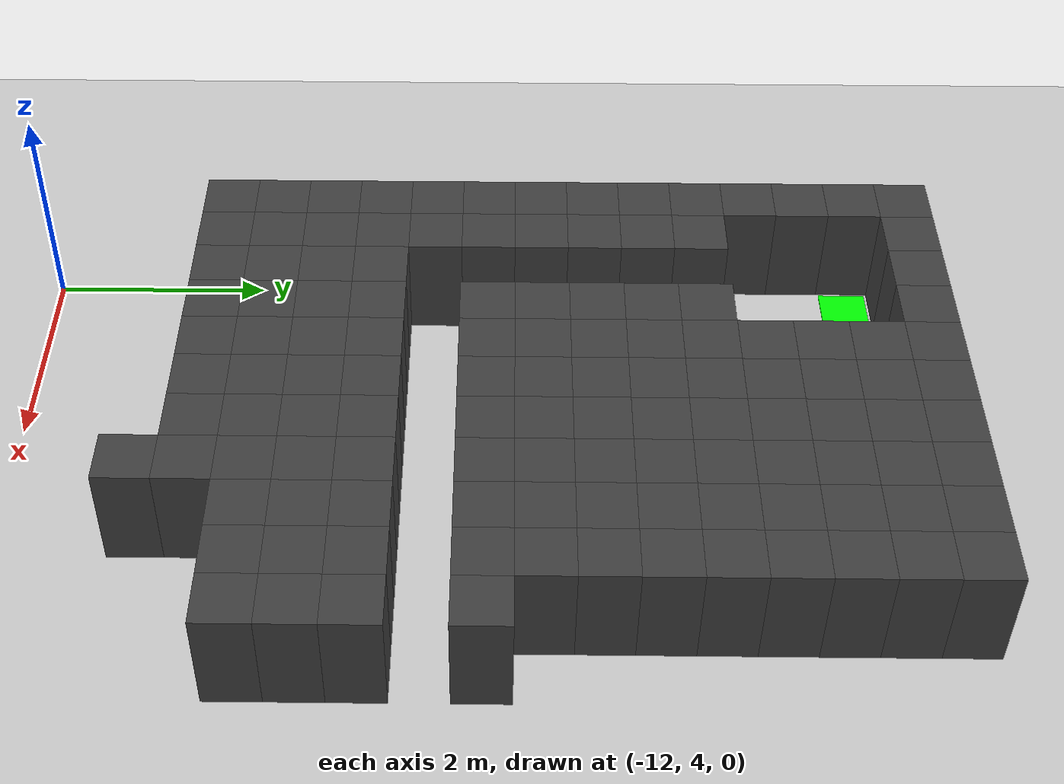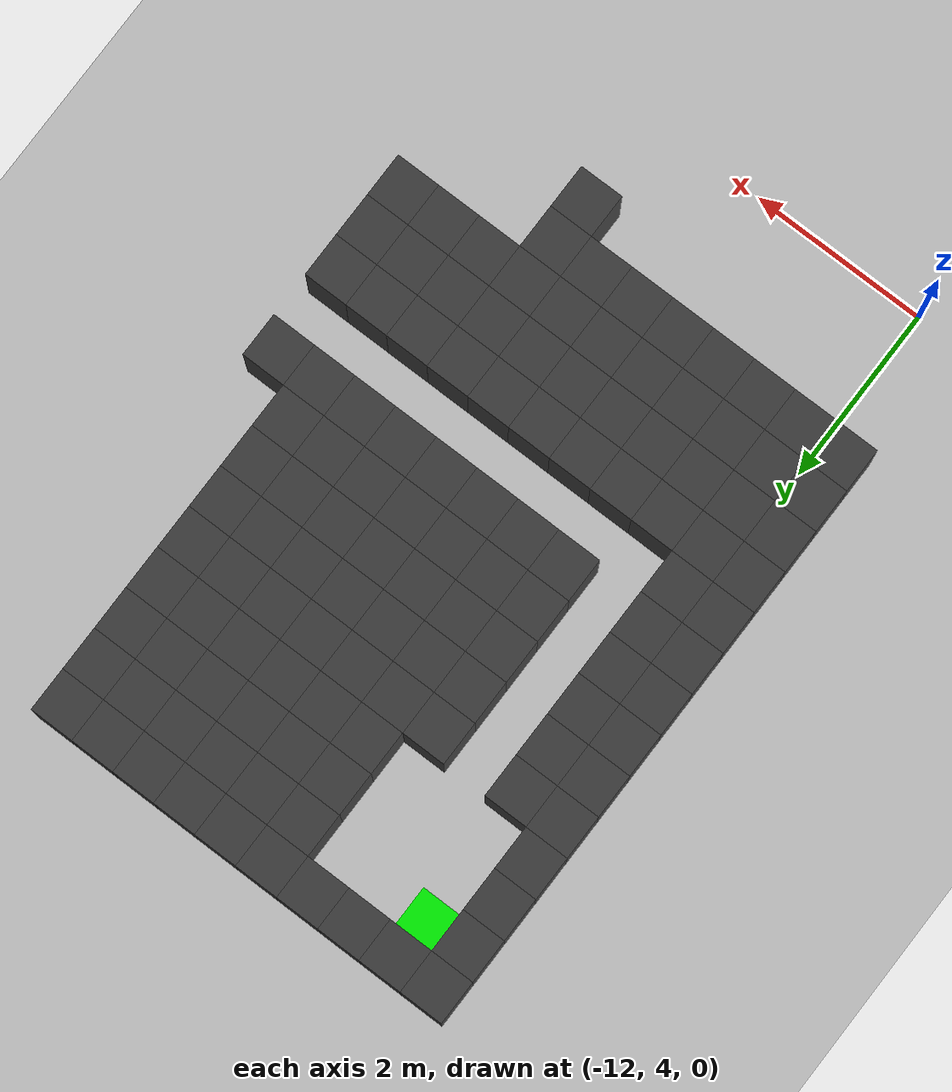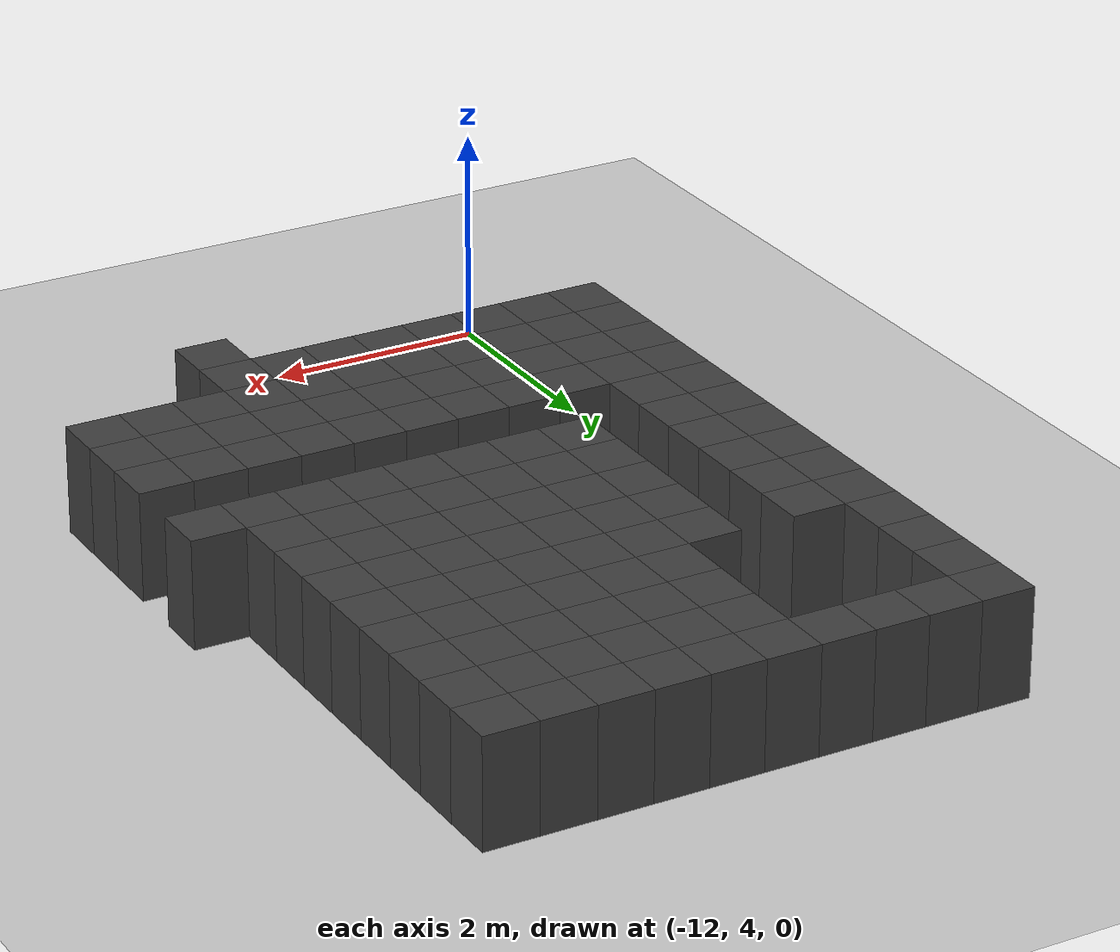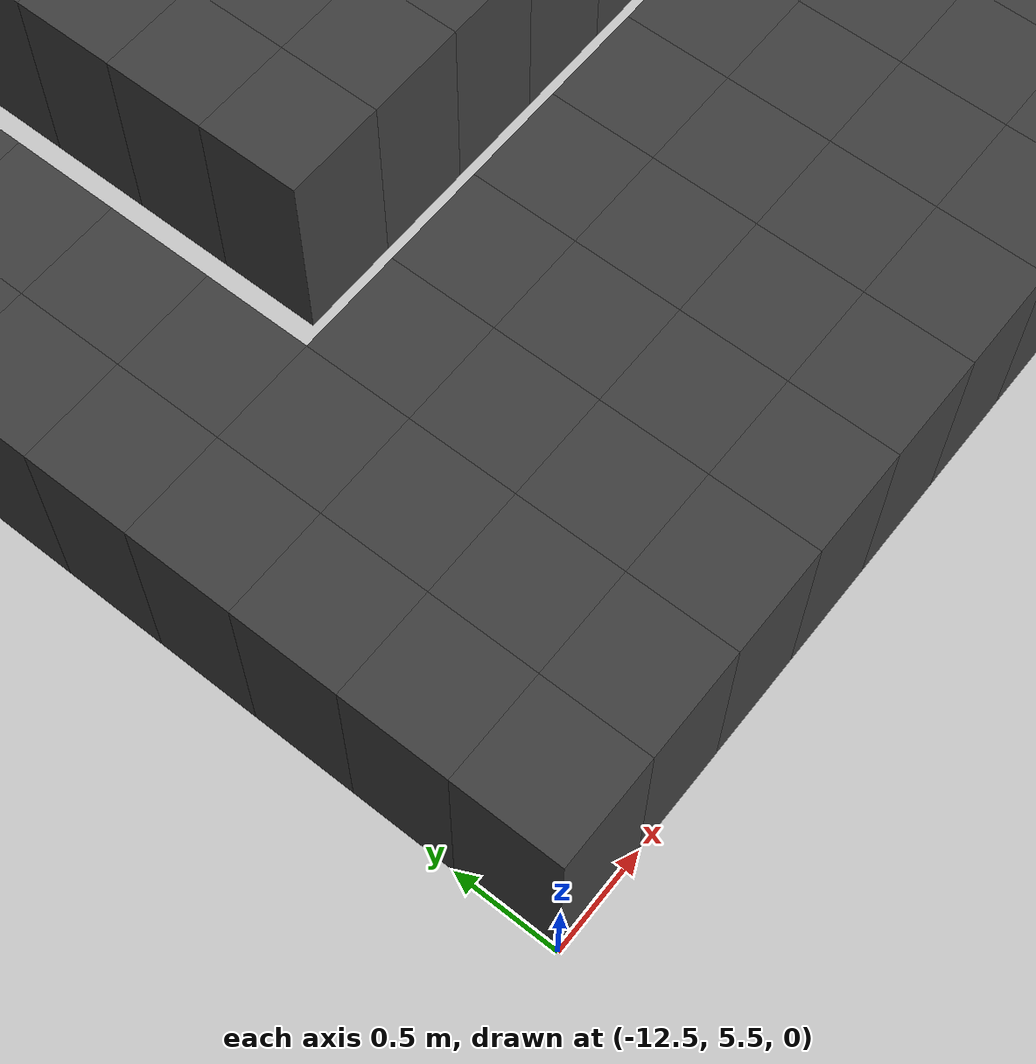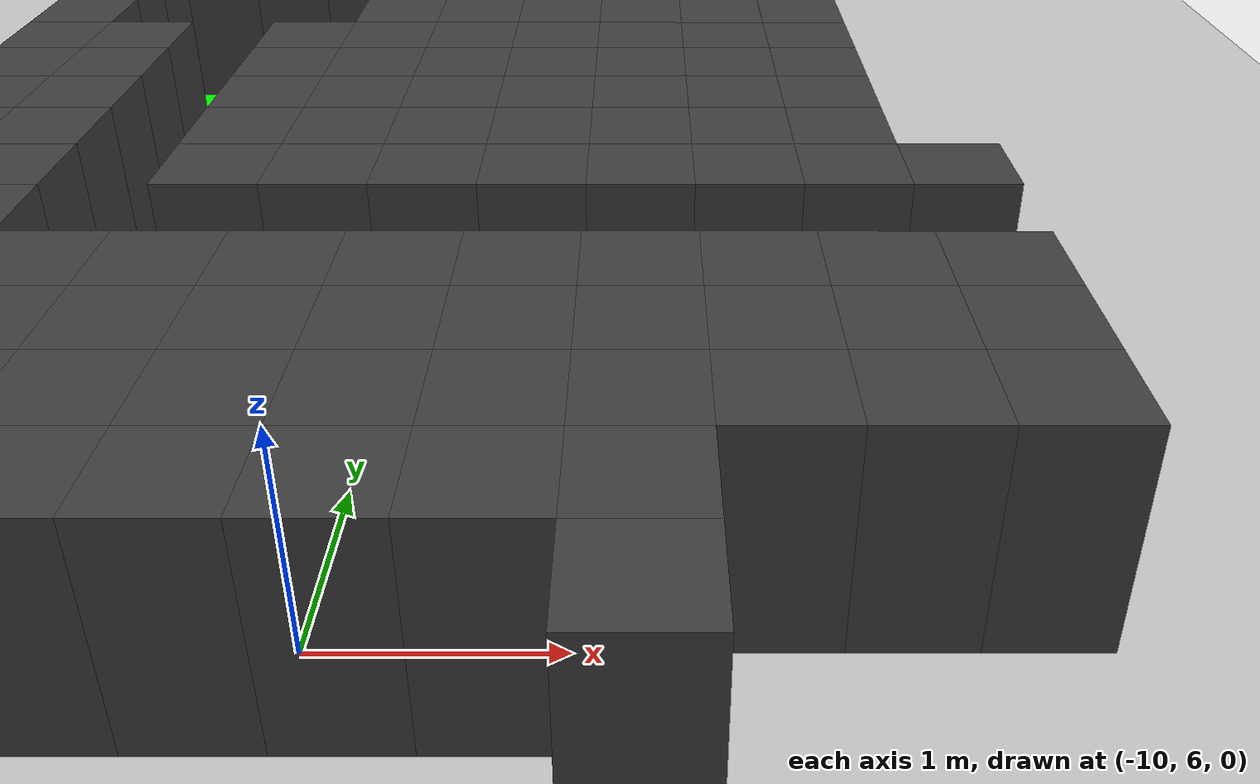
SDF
<sdf version="1.7">
 <world name="map_14888">
  <model name="ground_plane">
   <static>true</static>
   <link name="link">
    <collision name="collision">
     <geometry><plane><normal>0 0 1</normal><size>200 200</size></plane></geometry>
    </collision>
    <visual name="visual">
     <geometry><plane><normal>0 0 1</normal><size>200 200</size></plane></geometry>
     <material><ambient>0.8 0.8 0.8 1</ambient><diffuse>0.8 0.8 0.8 1</diffuse></material>
    </visual>
   </link>
  </model>
  <model name="maze_environment">
   <static>true</static>
   <link name="wall_0">
    <pose>-12.250 12.250 0.500 0 0 0</pose>
    <collision name="col"><geometry><box><size>0.5 0.5 1.0</size></box></geometry></collision>
    <visual name="vis">
     <geometry><box><size>0.5 0.5 1.0</size></box></geometry>
     <material><ambient>0.15 0.15 0.15 1</ambient><diffuse>0.25 0.25 0.25 1</diffuse></material>
    </visual>
   </link>
   <link name="wall_1">
    <pose>-11.750 12.250 0.500 0 0 0</pose>
    <collision name="col"><geometry><box><size>0.5 0.5 1.0</size></box></geometry></collision>
    <visual name="vis">
     <geometry><box><size>0.5 0.5 1.0</size></box></geometry>
     <material><ambient>0.15 0.15 0.15 1</ambient><diffuse>0.25 0.25 0.25 1</diffuse></material>
    </visual>
   </link>
   <link name="wall_2">
    <pose>-11.250 12.250 0.500 0 0 0</pose>
    <collision name="col"><geometry><box><size>0.5 0.5 1.0</size></box></geometry></collision>
    <visual name="vis">
     <geometry><box><size>0.5 0.5 1.0</size></box></geometry>
     <material><ambient>0.15 0.15 0.15 1</ambient><diffuse>0.25 0.25 0.25 1</diffuse></material>
    </visual>
   </link>
   <link name="wall_3">
    <pose>-10.750 12.250 0.500 0 0 0</pose>
    <collision name="col"><geometry><box><size>0.5 0.5 1.0</size></box></geometry></collision>
    <visual name="vis">
     <geometry><box><size>0.5 0.5 1.0</size></box></geometry>
     <material><ambient>0.15 0.15 0.15 1</ambient><diffuse>0.25 0.25 0.25 1</diffuse></material>
    </visual>
   </link>
   <link name="wall_4">
    <pose>-10.250 12.250 0.500 0 0 0</pose>
    <collision name="col"><geometry><box><size>0.5 0.5 1.0</size></box></geometry></collision>
    <visual name="vis">
     <geometry><box><size>0.5 0.5 1.0</size></box></geometry>
     <material><ambient>0.15 0.15 0.15 1</ambient><diffuse>0.25 0.25 0.25 1</diffuse></material>
    </visual>
   </link>
   <link name="wall_5">
    <pose>-9.750 12.250 0.500 0 0 0</pose>
    <collision name="col"><geometry><box><size>0.5 0.5 1.0</size></box></geometry></collision>
    <visual name="vis">
     <geometry><box><size>0.5 0.5 1.0</size></box></geometry>
     <material><ambient>0.15 0.15 0.15 1</ambient><diffuse>0.25 0.25 0.25 1</diffuse></material>
    </visual>
   </link>
   <link name="wall_6">
    <pose>-9.250 12.250 0.500 0 0 0</pose>
    <collision name="col"><geometry><box><size>0.5 0.5 1.0</size></box></geometry></collision>
    <visual name="vis">
     <geometry><box><size>0.5 0.5 1.0</size></box></geometry>
     <material><ambient>0.15 0.15 0.15 1</ambient><diffuse>0.25 0.25 0.25 1</diffuse></material>
    </visual>
   </link>
   <link name="wall_7">
    <pose>-8.750 12.250 0.500 0 0 0</pose>
    <collision name="col"><geometry><box><size>0.5 0.5 1.0</size></box></geometry></collision>
    <visual name="vis">
     <geometry><box><size>0.5 0.5 1.0</size></box></geometry>
     <material><ambient>0.15 0.15 0.15 1</ambient><diffuse>0.25 0.25 0.25 1</diffuse></material>
    </visual>
   </link>
   <link name="wall_8">
    <pose>-8.250 12.250 0.500 0 0 0</pose>
    <collision name="col"><geometry><box><size>0.5 0.5 1.0</size></box></geometry></collision>
    <visual name="vis">
     <geometry><box><size>0.5 0.5 1.0</size></box></geometry>
     <material><ambient>0.15 0.15 0.15 1</ambient><diffuse>0.25 0.25 0.25 1</diffuse></material>
    </visual>
   </link>
   <link name="wall_9">
    <pose>-7.750 12.250 0.500 0 0 0</pose>
    <collision name="col"><geometry><box><size>0.5 0.5 1.0</size></box></geometry></collision>
    <visual name="vis">
     <geometry><box><size>0.5 0.5 1.0</size></box></geometry>
     <material><ambient>0.15 0.15 0.15 1</ambient><diffuse>0.25 0.25 0.25 1</diffuse></material>
    </visual>
   </link>
   <link name="wall_50">
    <pose>-12.250 11.750 0.500 0 0 0</pose>
    <collision name="col"><geometry><box><size>0.5 0.5 1.0</size></box></geometry></collision>
    <visual name="vis">
     <geometry><box><size>0.5 0.5 1.0</size></box></geometry>
     <material><ambient>0.15 0.15 0.15 1</ambient><diffuse>0.25 0.25 0.25 1</diffuse></material>
    </visual>
   </link>
   <link name="wall_51">
    <pose>-10.250 11.750 0.500 0 0 0</pose>
    <collision name="col"><geometry><box><size>0.5 0.5 1.0</size></box></geometry></collision>
    <visual name="vis">
     <geometry><box><size>0.5 0.5 1.0</size></box></geometry>
     <material><ambient>0.15 0.15 0.15 1</ambient><diffuse>0.25 0.25 0.25 1</diffuse></material>
    </visual>
   </link>
   <link name="wall_52">
    <pose>-9.750 11.750 0.500 0 0 0</pose>
    <collision name="col"><geometry><box><size>0.5 0.5 1.0</size></box></geometry></collision>
    <visual name="vis">
     <geometry><box><size>0.5 0.5 1.0</size></box></geometry>
     <material><ambient>0.15 0.15 0.15 1</ambient><diffuse>0.25 0.25 0.25 1</diffuse></material>
    </visual>
   </link>
   <link name="wall_53">
    <pose>-9.250 11.750 0.500 0 0 0</pose>
    <collision name="col"><geometry><box><size>0.5 0.5 1.0</size></box></geometry></collision>
    <visual name="vis">
     <geometry><box><size>0.5 0.5 1.0</size></box></geometry>
     <material><ambient>0.15 0.15 0.15 1</ambient><diffuse>0.25 0.25 0.25 1</diffuse></material>
    </visual>
   </link>
   <link name="wall_54">
    <pose>-8.750 11.750 0.500 0 0 0</pose>
    <collision name="col"><geometry><box><size>0.5 0.5 1.0</size></box></geometry></collision>
    <visual name="vis">
     <geometry><box><size>0.5 0.5 1.0</size></box></geometry>
     <material><ambient>0.15 0.15 0.15 1</ambient><diffuse>0.25 0.25 0.25 1</diffuse></material>
    </visual>
   </link>
   <link name="wall_55">
    <pose>-8.250 11.750 0.500 0 0 0</pose>
    <collision name="col"><geometry><box><size>0.5 0.5 1.0</size></box></geometry></collision>
    <visual name="vis">
     <geometry><box><size>0.5 0.5 1.0</size></box></geometry>
     <material><ambient>0.15 0.15 0.15 1</ambient><diffuse>0.25 0.25 0.25 1</diffuse></material>
    </visual>
   </link>
   <link name="wall_56">
    <pose>-7.750 11.750 0.500 0 0 0</pose>
    <collision name="col"><geometry><box><size>0.5 0.5 1.0</size></box></geometry></collision>
    <visual name="vis">
     <geometry><box><size>0.5 0.5 1.0</size></box></geometry>
     <material><ambient>0.15 0.15 0.15 1</ambient><diffuse>0.25 0.25 0.25 1</diffuse></material>
    </visual>
   </link>
   <link name="wall_97">
    <pose>-12.250 11.250 0.500 0 0 0</pose>
    <collision name="col"><geometry><box><size>0.5 0.5 1.0</size></box></geometry></collision>
    <visual name="vis">
     <geometry><box><size>0.5 0.5 1.0</size></box></geometry>
     <material><ambient>0.15 0.15 0.15 1</ambient><diffuse>0.25 0.25 0.25 1</diffuse></material>
    </visual>
   </link>
   <link name="wall_98">
    <pose>-10.250 11.250 0.500 0 0 0</pose>
    <collision name="col"><geometry><box><size>0.5 0.5 1.0</size></box></geometry></collision>
    <visual name="vis">
     <geometry><box><size>0.5 0.5 1.0</size></box></geometry>
     <material><ambient>0.15 0.15 0.15 1</ambient><diffuse>0.25 0.25 0.25 1</diffuse></material>
    </visual>
   </link>
   <link name="wall_99">
    <pose>-9.750 11.250 0.500 0 0 0</pose>
    <collision name="col"><geometry><box><size>0.5 0.5 1.0</size></box></geometry></collision>
    <visual name="vis">
     <geometry><box><size>0.5 0.5 1.0</size></box></geometry>
     <material><ambient>0.15 0.15 0.15 1</ambient><diffuse>0.25 0.25 0.25 1</diffuse></material>
    </visual>
   </link>
   <link name="wall_100">
    <pose>-9.250 11.250 0.500 0 0 0</pose>
    <collision name="col"><geometry><box><size>0.5 0.5 1.0</size></box></geometry></collision>
    <visual name="vis">
     <geometry><box><size>0.5 0.5 1.0</size></box></geometry>
     <material><ambient>0.15 0.15 0.15 1</ambient><diffuse>0.25 0.25 0.25 1</diffuse></material>
    </visual>
   </link>
   <link name="wall_101">
    <pose>-8.750 11.250 0.500 0 0 0</pose>
    <collision name="col"><geometry><box><size>0.5 0.5 1.0</size></box></geometry></collision>
    <visual name="vis">
     <geometry><box><size>0.5 0.5 1.0</size></box></geometry>
     <material><ambient>0.15 0.15 0.15 1</ambient><diffuse>0.25 0.25 0.25 1</diffuse></material>
    </visual>
   </link>
   <link name="wall_102">
    <pose>-8.250 11.250 0.500 0 0 0</pose>
    <collision name="col"><geometry><box><size>0.5 0.5 1.0</size></box></geometry></collision>
    <visual name="vis">
     <geometry><box><size>0.5 0.5 1.0</size></box></geometry>
     <material><ambient>0.15 0.15 0.15 1</ambient><diffuse>0.25 0.25 0.25 1</diffuse></material>
    </visual>
   </link>
   <link name="wall_103">
    <pose>-7.750 11.250 0.500 0 0 0</pose>
    <collision name="col"><geometry><box><size>0.5 0.5 1.0</size></box></geometry></collision>
    <visual name="vis">
     <geometry><box><size>0.5 0.5 1.0</size></box></geometry>
     <material><ambient>0.15 0.15 0.15 1</ambient><diffuse>0.25 0.25 0.25 1</diffuse></material>
    </visual>
   </link>
   <link name="wall_138">
    <pose>-12.250 10.750 0.500 0 0 0</pose>
    <collision name="col"><geometry><box><size>0.5 0.5 1.0</size></box></geometry></collision>
    <visual name="vis">
     <geometry><box><size>0.5 0.5 1.0</size></box></geometry>
     <material><ambient>0.15 0.15 0.15 1</ambient><diffuse>0.25 0.25 0.25 1</diffuse></material>
    </visual>
   </link>
   <link name="wall_139">
    <pose>-10.250 10.750 0.500 0 0 0</pose>
    <collision name="col"><geometry><box><size>0.5 0.5 1.0</size></box></geometry></collision>
    <visual name="vis">
     <geometry><box><size>0.5 0.5 1.0</size></box></geometry>
     <material><ambient>0.15 0.15 0.15 1</ambient><diffuse>0.25 0.25 0.25 1</diffuse></material>
    </visual>
   </link>
   <link name="wall_140">
    <pose>-9.750 10.750 0.500 0 0 0</pose>
    <collision name="col"><geometry><box><size>0.5 0.5 1.0</size></box></geometry></collision>
    <visual name="vis">
     <geometry><box><size>0.5 0.5 1.0</size></box></geometry>
     <material><ambient>0.15 0.15 0.15 1</ambient><diffuse>0.25 0.25 0.25 1</diffuse></material>
    </visual>
   </link>
   <link name="wall_141">
    <pose>-9.250 10.750 0.500 0 0 0</pose>
    <collision name="col"><geometry><box><size>0.5 0.5 1.0</size></box></geometry></collision>
    <visual name="vis">
     <geometry><box><size>0.5 0.5 1.0</size></box></geometry>
     <material><ambient>0.15 0.15 0.15 1</ambient><diffuse>0.25 0.25 0.25 1</diffuse></material>
    </visual>
   </link>
   <link name="wall_142">
    <pose>-8.750 10.750 0.500 0 0 0</pose>
    <collision name="col"><geometry><box><size>0.5 0.5 1.0</size></box></geometry></collision>
    <visual name="vis">
     <geometry><box><size>0.5 0.5 1.0</size></box></geometry>
     <material><ambient>0.15 0.15 0.15 1</ambient><diffuse>0.25 0.25 0.25 1</diffuse></material>
    </visual>
   </link>
   <link name="wall_143">
    <pose>-8.250 10.750 0.500 0 0 0</pose>
    <collision name="col"><geometry><box><size>0.5 0.5 1.0</size></box></geometry></collision>
    <visual name="vis">
     <geometry><box><size>0.5 0.5 1.0</size></box></geometry>
     <material><ambient>0.15 0.15 0.15 1</ambient><diffuse>0.25 0.25 0.25 1</diffuse></material>
    </visual>
   </link>
   <link name="wall_144">
    <pose>-7.750 10.750 0.500 0 0 0</pose>
    <collision name="col"><geometry><box><size>0.5 0.5 1.0</size></box></geometry></collision>
    <visual name="vis">
     <geometry><box><size>0.5 0.5 1.0</size></box></geometry>
     <material><ambient>0.15 0.15 0.15 1</ambient><diffuse>0.25 0.25 0.25 1</diffuse></material>
    </visual>
   </link>
   <link name="wall_179">
    <pose>-12.250 10.250 0.500 0 0 0</pose>
    <collision name="col"><geometry><box><size>0.5 0.5 1.0</size></box></geometry></collision>
    <visual name="vis">
     <geometry><box><size>0.5 0.5 1.0</size></box></geometry>
     <material><ambient>0.15 0.15 0.15 1</ambient><diffuse>0.25 0.25 0.25 1</diffuse></material>
    </visual>
   </link>
   <link name="wall_180">
    <pose>-11.750 10.250 0.500 0 0 0</pose>
    <collision name="col"><geometry><box><size>0.5 0.5 1.0</size></box></geometry></collision>
    <visual name="vis">
     <geometry><box><size>0.5 0.5 1.0</size></box></geometry>
     <material><ambient>0.15 0.15 0.15 1</ambient><diffuse>0.25 0.25 0.25 1</diffuse></material>
    </visual>
   </link>
   <link name="wall_181">
    <pose>-10.750 10.250 0.500 0 0 0</pose>
    <collision name="col"><geometry><box><size>0.5 0.5 1.0</size></box></geometry></collision>
    <visual name="vis">
     <geometry><box><size>0.5 0.5 1.0</size></box></geometry>
     <material><ambient>0.15 0.15 0.15 1</ambient><diffuse>0.25 0.25 0.25 1</diffuse></material>
    </visual>
   </link>
   <link name="wall_182">
    <pose>-10.250 10.250 0.500 0 0 0</pose>
    <collision name="col"><geometry><box><size>0.5 0.5 1.0</size></box></geometry></collision>
    <visual name="vis">
     <geometry><box><size>0.5 0.5 1.0</size></box></geometry>
     <material><ambient>0.15 0.15 0.15 1</ambient><diffuse>0.25 0.25 0.25 1</diffuse></material>
    </visual>
   </link>
   <link name="wall_183">
    <pose>-9.750 10.250 0.500 0 0 0</pose>
    <collision name="col"><geometry><box><size>0.5 0.5 1.0</size></box></geometry></collision>
    <visual name="vis">
     <geometry><box><size>0.5 0.5 1.0</size></box></geometry>
     <material><ambient>0.15 0.15 0.15 1</ambient><diffuse>0.25 0.25 0.25 1</diffuse></material>
    </visual>
   </link>
   <link name="wall_184">
    <pose>-9.250 10.250 0.500 0 0 0</pose>
    <collision name="col"><geometry><box><size>0.5 0.5 1.0</size></box></geometry></collision>
    <visual name="vis">
     <geometry><box><size>0.5 0.5 1.0</size></box></geometry>
     <material><ambient>0.15 0.15 0.15 1</ambient><diffuse>0.25 0.25 0.25 1</diffuse></material>
    </visual>
   </link>
   <link name="wall_185">
    <pose>-8.750 10.250 0.500 0 0 0</pose>
    <collision name="col"><geometry><box><size>0.5 0.5 1.0</size></box></geometry></collision>
    <visual name="vis">
     <geometry><box><size>0.5 0.5 1.0</size></box></geometry>
     <material><ambient>0.15 0.15 0.15 1</ambient><diffuse>0.25 0.25 0.25 1</diffuse></material>
    </visual>
   </link>
   <link name="wall_186">
    <pose>-8.250 10.250 0.500 0 0 0</pose>
    <collision name="col"><geometry><box><size>0.5 0.5 1.0</size></box></geometry></collision>
    <visual name="vis">
     <geometry><box><size>0.5 0.5 1.0</size></box></geometry>
     <material><ambient>0.15 0.15 0.15 1</ambient><diffuse>0.25 0.25 0.25 1</diffuse></material>
    </visual>
   </link>
   <link name="wall_187">
    <pose>-7.750 10.250 0.500 0 0 0</pose>
    <collision name="col"><geometry><box><size>0.5 0.5 1.0</size></box></geometry></collision>
    <visual name="vis">
     <geometry><box><size>0.5 0.5 1.0</size></box></geometry>
     <material><ambient>0.15 0.15 0.15 1</ambient><diffuse>0.25 0.25 0.25 1</diffuse></material>
    </visual>
   </link>
   <link name="wall_222">
    <pose>-12.250 9.750 0.500 0 0 0</pose>
    <collision name="col"><geometry><box><size>0.5 0.5 1.0</size></box></geometry></collision>
    <visual name="vis">
     <geometry><box><size>0.5 0.5 1.0</size></box></geometry>
     <material><ambient>0.15 0.15 0.15 1</ambient><diffuse>0.25 0.25 0.25 1</diffuse></material>
    </visual>
   </link>
   <link name="wall_223">
    <pose>-11.750 9.750 0.500 0 0 0</pose>
    <collision name="col"><geometry><box><size>0.5 0.5 1.0</size></box></geometry></collision>
    <visual name="vis">
     <geometry><box><size>0.5 0.5 1.0</size></box></geometry>
     <material><ambient>0.15 0.15 0.15 1</ambient><diffuse>0.25 0.25 0.25 1</diffuse></material>
    </visual>
   </link>
   <link name="wall_224">
    <pose>-10.750 9.750 0.500 0 0 0</pose>
    <collision name="col"><geometry><box><size>0.5 0.5 1.0</size></box></geometry></collision>
    <visual name="vis">
     <geometry><box><size>0.5 0.5 1.0</size></box></geometry>
     <material><ambient>0.15 0.15 0.15 1</ambient><diffuse>0.25 0.25 0.25 1</diffuse></material>
    </visual>
   </link>
   <link name="wall_225">
    <pose>-10.250 9.750 0.500 0 0 0</pose>
    <collision name="col"><geometry><box><size>0.5 0.5 1.0</size></box></geometry></collision>
    <visual name="vis">
     <geometry><box><size>0.5 0.5 1.0</size></box></geometry>
     <material><ambient>0.15 0.15 0.15 1</ambient><diffuse>0.25 0.25 0.25 1</diffuse></material>
    </visual>
   </link>
   <link name="wall_226">
    <pose>-9.750 9.750 0.500 0 0 0</pose>
    <collision name="col"><geometry><box><size>0.5 0.5 1.0</size></box></geometry></collision>
    <visual name="vis">
     <geometry><box><size>0.5 0.5 1.0</size></box></geometry>
     <material><ambient>0.15 0.15 0.15 1</ambient><diffuse>0.25 0.25 0.25 1</diffuse></material>
    </visual>
   </link>
   <link name="wall_227">
    <pose>-9.250 9.750 0.500 0 0 0</pose>
    <collision name="col"><geometry><box><size>0.5 0.5 1.0</size></box></geometry></collision>
    <visual name="vis">
     <geometry><box><size>0.5 0.5 1.0</size></box></geometry>
     <material><ambient>0.15 0.15 0.15 1</ambient><diffuse>0.25 0.25 0.25 1</diffuse></material>
    </visual>
   </link>
   <link name="wall_228">
    <pose>-8.750 9.750 0.500 0 0 0</pose>
    <collision name="col"><geometry><box><size>0.5 0.5 1.0</size></box></geometry></collision>
    <visual name="vis">
     <geometry><box><size>0.5 0.5 1.0</size></box></geometry>
     <material><ambient>0.15 0.15 0.15 1</ambient><diffuse>0.25 0.25 0.25 1</diffuse></material>
    </visual>
   </link>
   <link name="wall_229">
    <pose>-8.250 9.750 0.500 0 0 0</pose>
    <collision name="col"><geometry><box><size>0.5 0.5 1.0</size></box></geometry></collision>
    <visual name="vis">
     <geometry><box><size>0.5 0.5 1.0</size></box></geometry>
     <material><ambient>0.15 0.15 0.15 1</ambient><diffuse>0.25 0.25 0.25 1</diffuse></material>
    </visual>
   </link>
   <link name="wall_230">
    <pose>-7.750 9.750 0.500 0 0 0</pose>
    <collision name="col"><geometry><box><size>0.5 0.5 1.0</size></box></geometry></collision>
    <visual name="vis">
     <geometry><box><size>0.5 0.5 1.0</size></box></geometry>
     <material><ambient>0.15 0.15 0.15 1</ambient><diffuse>0.25 0.25 0.25 1</diffuse></material>
    </visual>
   </link>
   <link name="wall_264">
    <pose>-12.250 9.250 0.500 0 0 0</pose>
    <collision name="col"><geometry><box><size>0.5 0.5 1.0</size></box></geometry></collision>
    <visual name="vis">
     <geometry><box><size>0.5 0.5 1.0</size></box></geometry>
     <material><ambient>0.15 0.15 0.15 1</ambient><diffuse>0.25 0.25 0.25 1</diffuse></material>
    </visual>
   </link>
   <link name="wall_265">
    <pose>-11.750 9.250 0.500 0 0 0</pose>
    <collision name="col"><geometry><box><size>0.5 0.5 1.0</size></box></geometry></collision>
    <visual name="vis">
     <geometry><box><size>0.5 0.5 1.0</size></box></geometry>
     <material><ambient>0.15 0.15 0.15 1</ambient><diffuse>0.25 0.25 0.25 1</diffuse></material>
    </visual>
   </link>
   <link name="wall_266">
    <pose>-10.750 9.250 0.500 0 0 0</pose>
    <collision name="col"><geometry><box><size>0.5 0.5 1.0</size></box></geometry></collision>
    <visual name="vis">
     <geometry><box><size>0.5 0.5 1.0</size></box></geometry>
     <material><ambient>0.15 0.15 0.15 1</ambient><diffuse>0.25 0.25 0.25 1</diffuse></material>
    </visual>
   </link>
   <link name="wall_267">
    <pose>-10.250 9.250 0.500 0 0 0</pose>
    <collision name="col"><geometry><box><size>0.5 0.5 1.0</size></box></geometry></collision>
    <visual name="vis">
     <geometry><box><size>0.5 0.5 1.0</size></box></geometry>
     <material><ambient>0.15 0.15 0.15 1</ambient><diffuse>0.25 0.25 0.25 1</diffuse></material>
    </visual>
   </link>
   <link name="wall_268">
    <pose>-9.750 9.250 0.500 0 0 0</pose>
    <collision name="col"><geometry><box><size>0.5 0.5 1.0</size></box></geometry></collision>
    <visual name="vis">
     <geometry><box><size>0.5 0.5 1.0</size></box></geometry>
     <material><ambient>0.15 0.15 0.15 1</ambient><diffuse>0.25 0.25 0.25 1</diffuse></material>
    </visual>
   </link>
   <link name="wall_269">
    <pose>-9.250 9.250 0.500 0 0 0</pose>
    <collision name="col"><geometry><box><size>0.5 0.5 1.0</size></box></geometry></collision>
    <visual name="vis">
     <geometry><box><size>0.5 0.5 1.0</size></box></geometry>
     <material><ambient>0.15 0.15 0.15 1</ambient><diffuse>0.25 0.25 0.25 1</diffuse></material>
    </visual>
   </link>
   <link name="wall_270">
    <pose>-8.750 9.250 0.500 0 0 0</pose>
    <collision name="col"><geometry><box><size>0.5 0.5 1.0</size></box></geometry></collision>
    <visual name="vis">
     <geometry><box><size>0.5 0.5 1.0</size></box></geometry>
     <material><ambient>0.15 0.15 0.15 1</ambient><diffuse>0.25 0.25 0.25 1</diffuse></material>
    </visual>
   </link>
   <link name="wall_271">
    <pose>-8.250 9.250 0.500 0 0 0</pose>
    <collision name="col"><geometry><box><size>0.5 0.5 1.0</size></box></geometry></collision>
    <visual name="vis">
     <geometry><box><size>0.5 0.5 1.0</size></box></geometry>
     <material><ambient>0.15 0.15 0.15 1</ambient><diffuse>0.25 0.25 0.25 1</diffuse></material>
    </visual>
   </link>
   <link name="wall_272">
    <pose>-7.750 9.250 0.500 0 0 0</pose>
    <collision name="col"><geometry><box><size>0.5 0.5 1.0</size></box></geometry></collision>
    <visual name="vis">
     <geometry><box><size>0.5 0.5 1.0</size></box></geometry>
     <material><ambient>0.15 0.15 0.15 1</ambient><diffuse>0.25 0.25 0.25 1</diffuse></material>
    </visual>
   </link>
   <link name="wall_302">
    <pose>-12.250 8.750 0.500 0 0 0</pose>
    <collision name="col"><geometry><box><size>0.5 0.5 1.0</size></box></geometry></collision>
    <visual name="vis">
     <geometry><box><size>0.5 0.5 1.0</size></box></geometry>
     <material><ambient>0.15 0.15 0.15 1</ambient><diffuse>0.25 0.25 0.25 1</diffuse></material>
    </visual>
   </link>
   <link name="wall_303">
    <pose>-11.750 8.750 0.500 0 0 0</pose>
    <collision name="col"><geometry><box><size>0.5 0.5 1.0</size></box></geometry></collision>
    <visual name="vis">
     <geometry><box><size>0.5 0.5 1.0</size></box></geometry>
     <material><ambient>0.15 0.15 0.15 1</ambient><diffuse>0.25 0.25 0.25 1</diffuse></material>
    </visual>
   </link>
   <link name="wall_304">
    <pose>-10.750 8.750 0.500 0 0 0</pose>
    <collision name="col"><geometry><box><size>0.5 0.5 1.0</size></box></geometry></collision>
    <visual name="vis">
     <geometry><box><size>0.5 0.5 1.0</size></box></geometry>
     <material><ambient>0.15 0.15 0.15 1</ambient><diffuse>0.25 0.25 0.25 1</diffuse></material>
    </visual>
   </link>
   <link name="wall_305">
    <pose>-10.250 8.750 0.500 0 0 0</pose>
    <collision name="col"><geometry><box><size>0.5 0.5 1.0</size></box></geometry></collision>
    <visual name="vis">
     <geometry><box><size>0.5 0.5 1.0</size></box></geometry>
     <material><ambient>0.15 0.15 0.15 1</ambient><diffuse>0.25 0.25 0.25 1</diffuse></material>
    </visual>
   </link>
   <link name="wall_306">
    <pose>-9.750 8.750 0.500 0 0 0</pose>
    <collision name="col"><geometry><box><size>0.5 0.5 1.0</size></box></geometry></collision>
    <visual name="vis">
     <geometry><box><size>0.5 0.5 1.0</size></box></geometry>
     <material><ambient>0.15 0.15 0.15 1</ambient><diffuse>0.25 0.25 0.25 1</diffuse></material>
    </visual>
   </link>
   <link name="wall_307">
    <pose>-9.250 8.750 0.500 0 0 0</pose>
    <collision name="col"><geometry><box><size>0.5 0.5 1.0</size></box></geometry></collision>
    <visual name="vis">
     <geometry><box><size>0.5 0.5 1.0</size></box></geometry>
     <material><ambient>0.15 0.15 0.15 1</ambient><diffuse>0.25 0.25 0.25 1</diffuse></material>
    </visual>
   </link>
   <link name="wall_308">
    <pose>-8.750 8.750 0.500 0 0 0</pose>
    <collision name="col"><geometry><box><size>0.5 0.5 1.0</size></box></geometry></collision>
    <visual name="vis">
     <geometry><box><size>0.5 0.5 1.0</size></box></geometry>
     <material><ambient>0.15 0.15 0.15 1</ambient><diffuse>0.25 0.25 0.25 1</diffuse></material>
    </visual>
   </link>
   <link name="wall_309">
    <pose>-8.250 8.750 0.500 0 0 0</pose>
    <collision name="col"><geometry><box><size>0.5 0.5 1.0</size></box></geometry></collision>
    <visual name="vis">
     <geometry><box><size>0.5 0.5 1.0</size></box></geometry>
     <material><ambient>0.15 0.15 0.15 1</ambient><diffuse>0.25 0.25 0.25 1</diffuse></material>
    </visual>
   </link>
   <link name="wall_310">
    <pose>-7.750 8.750 0.500 0 0 0</pose>
    <collision name="col"><geometry><box><size>0.5 0.5 1.0</size></box></geometry></collision>
    <visual name="vis">
     <geometry><box><size>0.5 0.5 1.0</size></box></geometry>
     <material><ambient>0.15 0.15 0.15 1</ambient><diffuse>0.25 0.25 0.25 1</diffuse></material>
    </visual>
   </link>
   <link name="wall_336">
    <pose>-12.250 8.250 0.500 0 0 0</pose>
    <collision name="col"><geometry><box><size>0.5 0.5 1.0</size></box></geometry></collision>
    <visual name="vis">
     <geometry><box><size>0.5 0.5 1.0</size></box></geometry>
     <material><ambient>0.15 0.15 0.15 1</ambient><diffuse>0.25 0.25 0.25 1</diffuse></material>
    </visual>
   </link>
   <link name="wall_337">
    <pose>-11.750 8.250 0.500 0 0 0</pose>
    <collision name="col"><geometry><box><size>0.5 0.5 1.0</size></box></geometry></collision>
    <visual name="vis">
     <geometry><box><size>0.5 0.5 1.0</size></box></geometry>
     <material><ambient>0.15 0.15 0.15 1</ambient><diffuse>0.25 0.25 0.25 1</diffuse></material>
    </visual>
   </link>
   <link name="wall_338">
    <pose>-10.750 8.250 0.500 0 0 0</pose>
    <collision name="col"><geometry><box><size>0.5 0.5 1.0</size></box></geometry></collision>
    <visual name="vis">
     <geometry><box><size>0.5 0.5 1.0</size></box></geometry>
     <material><ambient>0.15 0.15 0.15 1</ambient><diffuse>0.25 0.25 0.25 1</diffuse></material>
    </visual>
   </link>
   <link name="wall_339">
    <pose>-10.250 8.250 0.500 0 0 0</pose>
    <collision name="col"><geometry><box><size>0.5 0.5 1.0</size></box></geometry></collision>
    <visual name="vis">
     <geometry><box><size>0.5 0.5 1.0</size></box></geometry>
     <material><ambient>0.15 0.15 0.15 1</ambient><diffuse>0.25 0.25 0.25 1</diffuse></material>
    </visual>
   </link>
   <link name="wall_340">
    <pose>-9.750 8.250 0.500 0 0 0</pose>
    <collision name="col"><geometry><box><size>0.5 0.5 1.0</size></box></geometry></collision>
    <visual name="vis">
     <geometry><box><size>0.5 0.5 1.0</size></box></geometry>
     <material><ambient>0.15 0.15 0.15 1</ambient><diffuse>0.25 0.25 0.25 1</diffuse></material>
    </visual>
   </link>
   <link name="wall_341">
    <pose>-9.250 8.250 0.500 0 0 0</pose>
    <collision name="col"><geometry><box><size>0.5 0.5 1.0</size></box></geometry></collision>
    <visual name="vis">
     <geometry><box><size>0.5 0.5 1.0</size></box></geometry>
     <material><ambient>0.15 0.15 0.15 1</ambient><diffuse>0.25 0.25 0.25 1</diffuse></material>
    </visual>
   </link>
   <link name="wall_342">
    <pose>-8.750 8.250 0.500 0 0 0</pose>
    <collision name="col"><geometry><box><size>0.5 0.5 1.0</size></box></geometry></collision>
    <visual name="vis">
     <geometry><box><size>0.5 0.5 1.0</size></box></geometry>
     <material><ambient>0.15 0.15 0.15 1</ambient><diffuse>0.25 0.25 0.25 1</diffuse></material>
    </visual>
   </link>
   <link name="wall_343">
    <pose>-8.250 8.250 0.500 0 0 0</pose>
    <collision name="col"><geometry><box><size>0.5 0.5 1.0</size></box></geometry></collision>
    <visual name="vis">
     <geometry><box><size>0.5 0.5 1.0</size></box></geometry>
     <material><ambient>0.15 0.15 0.15 1</ambient><diffuse>0.25 0.25 0.25 1</diffuse></material>
    </visual>
   </link>
   <link name="wall_344">
    <pose>-7.750 8.250 0.500 0 0 0</pose>
    <collision name="col"><geometry><box><size>0.5 0.5 1.0</size></box></geometry></collision>
    <visual name="vis">
     <geometry><box><size>0.5 0.5 1.0</size></box></geometry>
     <material><ambient>0.15 0.15 0.15 1</ambient><diffuse>0.25 0.25 0.25 1</diffuse></material>
    </visual>
   </link>
   <link name="wall_345">
    <pose>-7.250 8.250 0.500 0 0 0</pose>
    <collision name="col"><geometry><box><size>0.5 0.5 1.0</size></box></geometry></collision>
    <visual name="vis">
     <geometry><box><size>0.5 0.5 1.0</size></box></geometry>
     <material><ambient>0.15 0.15 0.15 1</ambient><diffuse>0.25 0.25 0.25 1</diffuse></material>
    </visual>
   </link>
   <link name="wall_370">
    <pose>-12.250 7.750 0.500 0 0 0</pose>
    <collision name="col"><geometry><box><size>0.5 0.5 1.0</size></box></geometry></collision>
    <visual name="vis">
     <geometry><box><size>0.5 0.5 1.0</size></box></geometry>
     <material><ambient>0.15 0.15 0.15 1</ambient><diffuse>0.25 0.25 0.25 1</diffuse></material>
    </visual>
   </link>
   <link name="wall_371">
    <pose>-11.750 7.750 0.500 0 0 0</pose>
    <collision name="col"><geometry><box><size>0.5 0.5 1.0</size></box></geometry></collision>
    <visual name="vis">
     <geometry><box><size>0.5 0.5 1.0</size></box></geometry>
     <material><ambient>0.15 0.15 0.15 1</ambient><diffuse>0.25 0.25 0.25 1</diffuse></material>
    </visual>
   </link>
   <link name="wall_391">
    <pose>-12.250 7.250 0.500 0 0 0</pose>
    <collision name="col"><geometry><box><size>0.5 0.5 1.0</size></box></geometry></collision>
    <visual name="vis">
     <geometry><box><size>0.5 0.5 1.0</size></box></geometry>
     <material><ambient>0.15 0.15 0.15 1</ambient><diffuse>0.25 0.25 0.25 1</diffuse></material>
    </visual>
   </link>
   <link name="wall_392">
    <pose>-11.750 7.250 0.500 0 0 0</pose>
    <collision name="col"><geometry><box><size>0.5 0.5 1.0</size></box></geometry></collision>
    <visual name="vis">
     <geometry><box><size>0.5 0.5 1.0</size></box></geometry>
     <material><ambient>0.15 0.15 0.15 1</ambient><diffuse>0.25 0.25 0.25 1</diffuse></material>
    </visual>
   </link>
   <link name="wall_393">
    <pose>-11.250 7.250 0.500 0 0 0</pose>
    <collision name="col"><geometry><box><size>0.5 0.5 1.0</size></box></geometry></collision>
    <visual name="vis">
     <geometry><box><size>0.5 0.5 1.0</size></box></geometry>
     <material><ambient>0.15 0.15 0.15 1</ambient><diffuse>0.25 0.25 0.25 1</diffuse></material>
    </visual>
   </link>
   <link name="wall_394">
    <pose>-10.750 7.250 0.500 0 0 0</pose>
    <collision name="col"><geometry><box><size>0.5 0.5 1.0</size></box></geometry></collision>
    <visual name="vis">
     <geometry><box><size>0.5 0.5 1.0</size></box></geometry>
     <material><ambient>0.15 0.15 0.15 1</ambient><diffuse>0.25 0.25 0.25 1</diffuse></material>
    </visual>
   </link>
   <link name="wall_395">
    <pose>-10.250 7.250 0.500 0 0 0</pose>
    <collision name="col"><geometry><box><size>0.5 0.5 1.0</size></box></geometry></collision>
    <visual name="vis">
     <geometry><box><size>0.5 0.5 1.0</size></box></geometry>
     <material><ambient>0.15 0.15 0.15 1</ambient><diffuse>0.25 0.25 0.25 1</diffuse></material>
    </visual>
   </link>
   <link name="wall_396">
    <pose>-9.750 7.250 0.500 0 0 0</pose>
    <collision name="col"><geometry><box><size>0.5 0.5 1.0</size></box></geometry></collision>
    <visual name="vis">
     <geometry><box><size>0.5 0.5 1.0</size></box></geometry>
     <material><ambient>0.15 0.15 0.15 1</ambient><diffuse>0.25 0.25 0.25 1</diffuse></material>
    </visual>
   </link>
   <link name="wall_397">
    <pose>-9.250 7.250 0.500 0 0 0</pose>
    <collision name="col"><geometry><box><size>0.5 0.5 1.0</size></box></geometry></collision>
    <visual name="vis">
     <geometry><box><size>0.5 0.5 1.0</size></box></geometry>
     <material><ambient>0.15 0.15 0.15 1</ambient><diffuse>0.25 0.25 0.25 1</diffuse></material>
    </visual>
   </link>
   <link name="wall_398">
    <pose>-8.750 7.250 0.500 0 0 0</pose>
    <collision name="col"><geometry><box><size>0.5 0.5 1.0</size></box></geometry></collision>
    <visual name="vis">
     <geometry><box><size>0.5 0.5 1.0</size></box></geometry>
     <material><ambient>0.15 0.15 0.15 1</ambient><diffuse>0.25 0.25 0.25 1</diffuse></material>
    </visual>
   </link>
   <link name="wall_399">
    <pose>-8.250 7.250 0.500 0 0 0</pose>
    <collision name="col"><geometry><box><size>0.5 0.5 1.0</size></box></geometry></collision>
    <visual name="vis">
     <geometry><box><size>0.5 0.5 1.0</size></box></geometry>
     <material><ambient>0.15 0.15 0.15 1</ambient><diffuse>0.25 0.25 0.25 1</diffuse></material>
    </visual>
   </link>
   <link name="wall_400">
    <pose>-7.750 7.250 0.500 0 0 0</pose>
    <collision name="col"><geometry><box><size>0.5 0.5 1.0</size></box></geometry></collision>
    <visual name="vis">
     <geometry><box><size>0.5 0.5 1.0</size></box></geometry>
     <material><ambient>0.15 0.15 0.15 1</ambient><diffuse>0.25 0.25 0.25 1</diffuse></material>
    </visual>
   </link>
   <link name="wall_401">
    <pose>-7.250 7.250 0.500 0 0 0</pose>
    <collision name="col"><geometry><box><size>0.5 0.5 1.0</size></box></geometry></collision>
    <visual name="vis">
     <geometry><box><size>0.5 0.5 1.0</size></box></geometry>
     <material><ambient>0.15 0.15 0.15 1</ambient><diffuse>0.25 0.25 0.25 1</diffuse></material>
    </visual>
   </link>
   <link name="wall_426">
    <pose>-12.250 6.750 0.500 0 0 0</pose>
    <collision name="col"><geometry><box><size>0.5 0.5 1.0</size></box></geometry></collision>
    <visual name="vis">
     <geometry><box><size>0.5 0.5 1.0</size></box></geometry>
     <material><ambient>0.15 0.15 0.15 1</ambient><diffuse>0.25 0.25 0.25 1</diffuse></material>
    </visual>
   </link>
   <link name="wall_427">
    <pose>-11.750 6.750 0.500 0 0 0</pose>
    <collision name="col"><geometry><box><size>0.5 0.5 1.0</size></box></geometry></collision>
    <visual name="vis">
     <geometry><box><size>0.5 0.5 1.0</size></box></geometry>
     <material><ambient>0.15 0.15 0.15 1</ambient><diffuse>0.25 0.25 0.25 1</diffuse></material>
    </visual>
   </link>
   <link name="wall_428">
    <pose>-11.250 6.750 0.500 0 0 0</pose>
    <collision name="col"><geometry><box><size>0.5 0.5 1.0</size></box></geometry></collision>
    <visual name="vis">
     <geometry><box><size>0.5 0.5 1.0</size></box></geometry>
     <material><ambient>0.15 0.15 0.15 1</ambient><diffuse>0.25 0.25 0.25 1</diffuse></material>
    </visual>
   </link>
   <link name="wall_429">
    <pose>-10.750 6.750 0.500 0 0 0</pose>
    <collision name="col"><geometry><box><size>0.5 0.5 1.0</size></box></geometry></collision>
    <visual name="vis">
     <geometry><box><size>0.5 0.5 1.0</size></box></geometry>
     <material><ambient>0.15 0.15 0.15 1</ambient><diffuse>0.25 0.25 0.25 1</diffuse></material>
    </visual>
   </link>
   <link name="wall_430">
    <pose>-10.250 6.750 0.500 0 0 0</pose>
    <collision name="col"><geometry><box><size>0.5 0.5 1.0</size></box></geometry></collision>
    <visual name="vis">
     <geometry><box><size>0.5 0.5 1.0</size></box></geometry>
     <material><ambient>0.15 0.15 0.15 1</ambient><diffuse>0.25 0.25 0.25 1</diffuse></material>
    </visual>
   </link>
   <link name="wall_431">
    <pose>-9.750 6.750 0.500 0 0 0</pose>
    <collision name="col"><geometry><box><size>0.5 0.5 1.0</size></box></geometry></collision>
    <visual name="vis">
     <geometry><box><size>0.5 0.5 1.0</size></box></geometry>
     <material><ambient>0.15 0.15 0.15 1</ambient><diffuse>0.25 0.25 0.25 1</diffuse></material>
    </visual>
   </link>
   <link name="wall_432">
    <pose>-9.250 6.750 0.500 0 0 0</pose>
    <collision name="col"><geometry><box><size>0.5 0.5 1.0</size></box></geometry></collision>
    <visual name="vis">
     <geometry><box><size>0.5 0.5 1.0</size></box></geometry>
     <material><ambient>0.15 0.15 0.15 1</ambient><diffuse>0.25 0.25 0.25 1</diffuse></material>
    </visual>
   </link>
   <link name="wall_433">
    <pose>-8.750 6.750 0.500 0 0 0</pose>
    <collision name="col"><geometry><box><size>0.5 0.5 1.0</size></box></geometry></collision>
    <visual name="vis">
     <geometry><box><size>0.5 0.5 1.0</size></box></geometry>
     <material><ambient>0.15 0.15 0.15 1</ambient><diffuse>0.25 0.25 0.25 1</diffuse></material>
    </visual>
   </link>
   <link name="wall_434">
    <pose>-8.250 6.750 0.500 0 0 0</pose>
    <collision name="col"><geometry><box><size>0.5 0.5 1.0</size></box></geometry></collision>
    <visual name="vis">
     <geometry><box><size>0.5 0.5 1.0</size></box></geometry>
     <material><ambient>0.15 0.15 0.15 1</ambient><diffuse>0.25 0.25 0.25 1</diffuse></material>
    </visual>
   </link>
   <link name="wall_435">
    <pose>-7.750 6.750 0.500 0 0 0</pose>
    <collision name="col"><geometry><box><size>0.5 0.5 1.0</size></box></geometry></collision>
    <visual name="vis">
     <geometry><box><size>0.5 0.5 1.0</size></box></geometry>
     <material><ambient>0.15 0.15 0.15 1</ambient><diffuse>0.25 0.25 0.25 1</diffuse></material>
    </visual>
   </link>
   <link name="wall_436">
    <pose>-7.250 6.750 0.500 0 0 0</pose>
    <collision name="col"><geometry><box><size>0.5 0.5 1.0</size></box></geometry></collision>
    <visual name="vis">
     <geometry><box><size>0.5 0.5 1.0</size></box></geometry>
     <material><ambient>0.15 0.15 0.15 1</ambient><diffuse>0.25 0.25 0.25 1</diffuse></material>
    </visual>
   </link>
   <link name="wall_461">
    <pose>-12.250 6.250 0.500 0 0 0</pose>
    <collision name="col"><geometry><box><size>0.5 0.5 1.0</size></box></geometry></collision>
    <visual name="vis">
     <geometry><box><size>0.5 0.5 1.0</size></box></geometry>
     <material><ambient>0.15 0.15 0.15 1</ambient><diffuse>0.25 0.25 0.25 1</diffuse></material>
    </visual>
   </link>
   <link name="wall_462">
    <pose>-11.750 6.250 0.500 0 0 0</pose>
    <collision name="col"><geometry><box><size>0.5 0.5 1.0</size></box></geometry></collision>
    <visual name="vis">
     <geometry><box><size>0.5 0.5 1.0</size></box></geometry>
     <material><ambient>0.15 0.15 0.15 1</ambient><diffuse>0.25 0.25 0.25 1</diffuse></material>
    </visual>
   </link>
   <link name="wall_463">
    <pose>-11.250 6.250 0.500 0 0 0</pose>
    <collision name="col"><geometry><box><size>0.5 0.5 1.0</size></box></geometry></collision>
    <visual name="vis">
     <geometry><box><size>0.5 0.5 1.0</size></box></geometry>
     <material><ambient>0.15 0.15 0.15 1</ambient><diffuse>0.25 0.25 0.25 1</diffuse></material>
    </visual>
   </link>
   <link name="wall_464">
    <pose>-10.750 6.250 0.500 0 0 0</pose>
    <collision name="col"><geometry><box><size>0.5 0.5 1.0</size></box></geometry></collision>
    <visual name="vis">
     <geometry><box><size>0.5 0.5 1.0</size></box></geometry>
     <material><ambient>0.15 0.15 0.15 1</ambient><diffuse>0.25 0.25 0.25 1</diffuse></material>
    </visual>
   </link>
   <link name="wall_465">
    <pose>-10.250 6.250 0.500 0 0 0</pose>
    <collision name="col"><geometry><box><size>0.5 0.5 1.0</size></box></geometry></collision>
    <visual name="vis">
     <geometry><box><size>0.5 0.5 1.0</size></box></geometry>
     <material><ambient>0.15 0.15 0.15 1</ambient><diffuse>0.25 0.25 0.25 1</diffuse></material>
    </visual>
   </link>
   <link name="wall_466">
    <pose>-9.750 6.250 0.500 0 0 0</pose>
    <collision name="col"><geometry><box><size>0.5 0.5 1.0</size></box></geometry></collision>
    <visual name="vis">
     <geometry><box><size>0.5 0.5 1.0</size></box></geometry>
     <material><ambient>0.15 0.15 0.15 1</ambient><diffuse>0.25 0.25 0.25 1</diffuse></material>
    </visual>
   </link>
   <link name="wall_467">
    <pose>-9.250 6.250 0.500 0 0 0</pose>
    <collision name="col"><geometry><box><size>0.5 0.5 1.0</size></box></geometry></collision>
    <visual name="vis">
     <geometry><box><size>0.5 0.5 1.0</size></box></geometry>
     <material><ambient>0.15 0.15 0.15 1</ambient><diffuse>0.25 0.25 0.25 1</diffuse></material>
    </visual>
   </link>
   <link name="wall_468">
    <pose>-8.750 6.250 0.500 0 0 0</pose>
    <collision name="col"><geometry><box><size>0.5 0.5 1.0</size></box></geometry></collision>
    <visual name="vis">
     <geometry><box><size>0.5 0.5 1.0</size></box></geometry>
     <material><ambient>0.15 0.15 0.15 1</ambient><diffuse>0.25 0.25 0.25 1</diffuse></material>
    </visual>
   </link>
   <link name="wall_469">
    <pose>-8.250 6.250 0.500 0 0 0</pose>
    <collision name="col"><geometry><box><size>0.5 0.5 1.0</size></box></geometry></collision>
    <visual name="vis">
     <geometry><box><size>0.5 0.5 1.0</size></box></geometry>
     <material><ambient>0.15 0.15 0.15 1</ambient><diffuse>0.25 0.25 0.25 1</diffuse></material>
    </visual>
   </link>
   <link name="wall_470">
    <pose>-7.750 6.250 0.500 0 0 0</pose>
    <collision name="col"><geometry><box><size>0.5 0.5 1.0</size></box></geometry></collision>
    <visual name="vis">
     <geometry><box><size>0.5 0.5 1.0</size></box></geometry>
     <material><ambient>0.15 0.15 0.15 1</ambient><diffuse>0.25 0.25 0.25 1</diffuse></material>
    </visual>
   </link>
   <link name="wall_471">
    <pose>-7.250 6.250 0.500 0 0 0</pose>
    <collision name="col"><geometry><box><size>0.5 0.5 1.0</size></box></geometry></collision>
    <visual name="vis">
     <geometry><box><size>0.5 0.5 1.0</size></box></geometry>
     <material><ambient>0.15 0.15 0.15 1</ambient><diffuse>0.25 0.25 0.25 1</diffuse></material>
    </visual>
   </link>
   <link name="wall_492">
    <pose>-12.250 5.750 0.500 0 0 0</pose>
    <collision name="col"><geometry><box><size>0.5 0.5 1.0</size></box></geometry></collision>
    <visual name="vis">
     <geometry><box><size>0.5 0.5 1.0</size></box></geometry>
     <material><ambient>0.15 0.15 0.15 1</ambient><diffuse>0.25 0.25 0.25 1</diffuse></material>
    </visual>
   </link>
   <link name="wall_493">
    <pose>-11.750 5.750 0.500 0 0 0</pose>
    <collision name="col"><geometry><box><size>0.5 0.5 1.0</size></box></geometry></collision>
    <visual name="vis">
     <geometry><box><size>0.5 0.5 1.0</size></box></geometry>
     <material><ambient>0.15 0.15 0.15 1</ambient><diffuse>0.25 0.25 0.25 1</diffuse></material>
    </visual>
   </link>
   <link name="wall_494">
    <pose>-11.250 5.750 0.500 0 0 0</pose>
    <collision name="col"><geometry><box><size>0.5 0.5 1.0</size></box></geometry></collision>
    <visual name="vis">
     <geometry><box><size>0.5 0.5 1.0</size></box></geometry>
     <material><ambient>0.15 0.15 0.15 1</ambient><diffuse>0.25 0.25 0.25 1</diffuse></material>
    </visual>
   </link>
   <link name="wall_495">
    <pose>-10.750 5.750 0.500 0 0 0</pose>
    <collision name="col"><geometry><box><size>0.5 0.5 1.0</size></box></geometry></collision>
    <visual name="vis">
     <geometry><box><size>0.5 0.5 1.0</size></box></geometry>
     <material><ambient>0.15 0.15 0.15 1</ambient><diffuse>0.25 0.25 0.25 1</diffuse></material>
    </visual>
   </link>
   <link name="wall_496">
    <pose>-10.250 5.750 0.500 0 0 0</pose>
    <collision name="col"><geometry><box><size>0.5 0.5 1.0</size></box></geometry></collision>
    <visual name="vis">
     <geometry><box><size>0.5 0.5 1.0</size></box></geometry>
     <material><ambient>0.15 0.15 0.15 1</ambient><diffuse>0.25 0.25 0.25 1</diffuse></material>
    </visual>
   </link>
   <link name="wall_497">
    <pose>-9.750 5.750 0.500 0 0 0</pose>
    <collision name="col"><geometry><box><size>0.5 0.5 1.0</size></box></geometry></collision>
    <visual name="vis">
     <geometry><box><size>0.5 0.5 1.0</size></box></geometry>
     <material><ambient>0.15 0.15 0.15 1</ambient><diffuse>0.25 0.25 0.25 1</diffuse></material>
    </visual>
   </link>
   <link name="wall_498">
    <pose>-9.250 5.750 0.500 0 0 0</pose>
    <collision name="col"><geometry><box><size>0.5 0.5 1.0</size></box></geometry></collision>
    <visual name="vis">
     <geometry><box><size>0.5 0.5 1.0</size></box></geometry>
     <material><ambient>0.15 0.15 0.15 1</ambient><diffuse>0.25 0.25 0.25 1</diffuse></material>
    </visual>
   </link>
   <link name="wall_499">
    <pose>-8.750 5.750 0.500 0 0 0</pose>
    <collision name="col"><geometry><box><size>0.5 0.5 1.0</size></box></geometry></collision>
    <visual name="vis">
     <geometry><box><size>0.5 0.5 1.0</size></box></geometry>
     <material><ambient>0.15 0.15 0.15 1</ambient><diffuse>0.25 0.25 0.25 1</diffuse></material>
    </visual>
   </link>
   <link name="wall_534">
    <pose>-8.750 5.250 0.500 0 0 0</pose>
    <collision name="col"><geometry><box><size>0.5 0.5 1.0</size></box></geometry></collision>
    <visual name="vis">
     <geometry><box><size>0.5 0.5 1.0</size></box></geometry>
     <material><ambient>0.15 0.15 0.15 1</ambient><diffuse>0.25 0.25 0.25 1</diffuse></material>
    </visual>
   </link>
   <link name="start_zone">
    <pose>-11.750 11.750 0.005 0 0 0</pose>
    <visual name="vis">
     <geometry><box><size>0.45 0.45 0.01</size></box></geometry>
     <material>
      <ambient>0.0 1.0 0.0 1</ambient>
      <diffuse>0.0 1.0 0.0 1</diffuse>
      <emissive>0.00 0.60 0.00 1</emissive>
     </material>
    </visual>
   </link>
  </model>
 </world>
</sdf>
